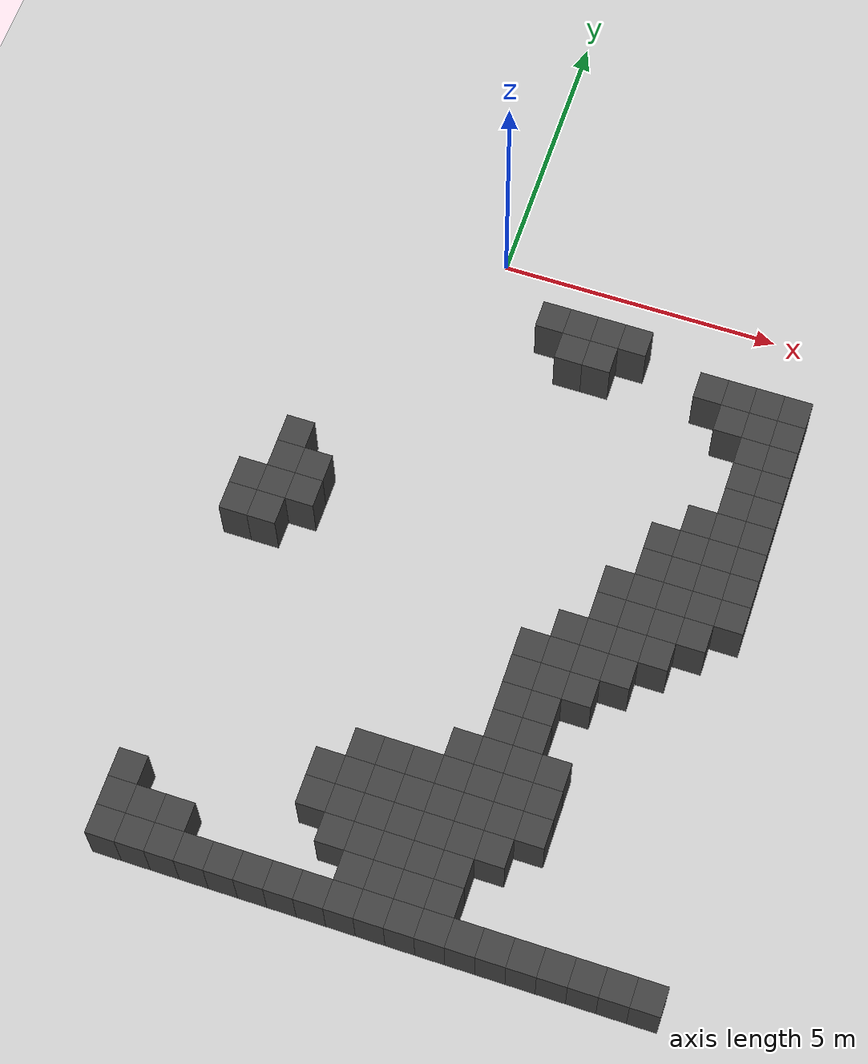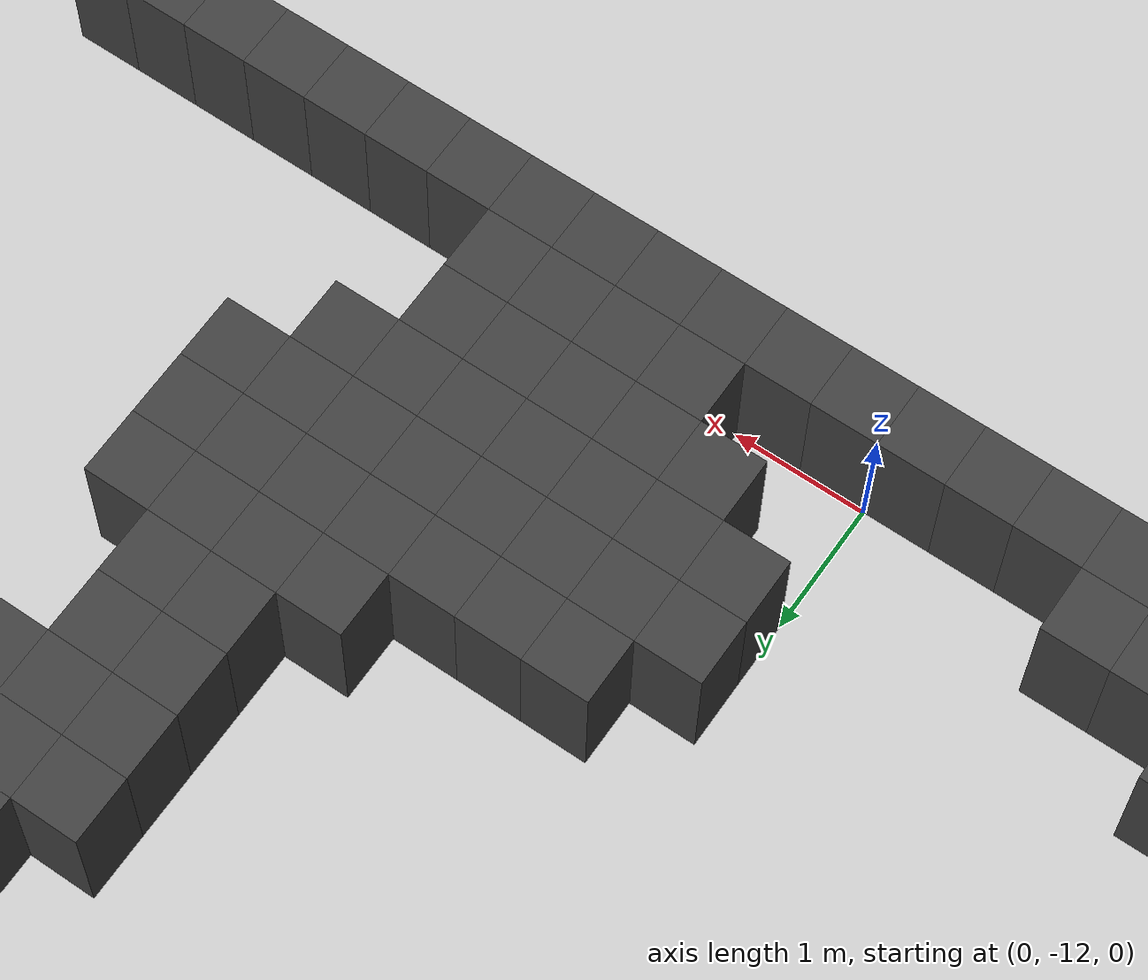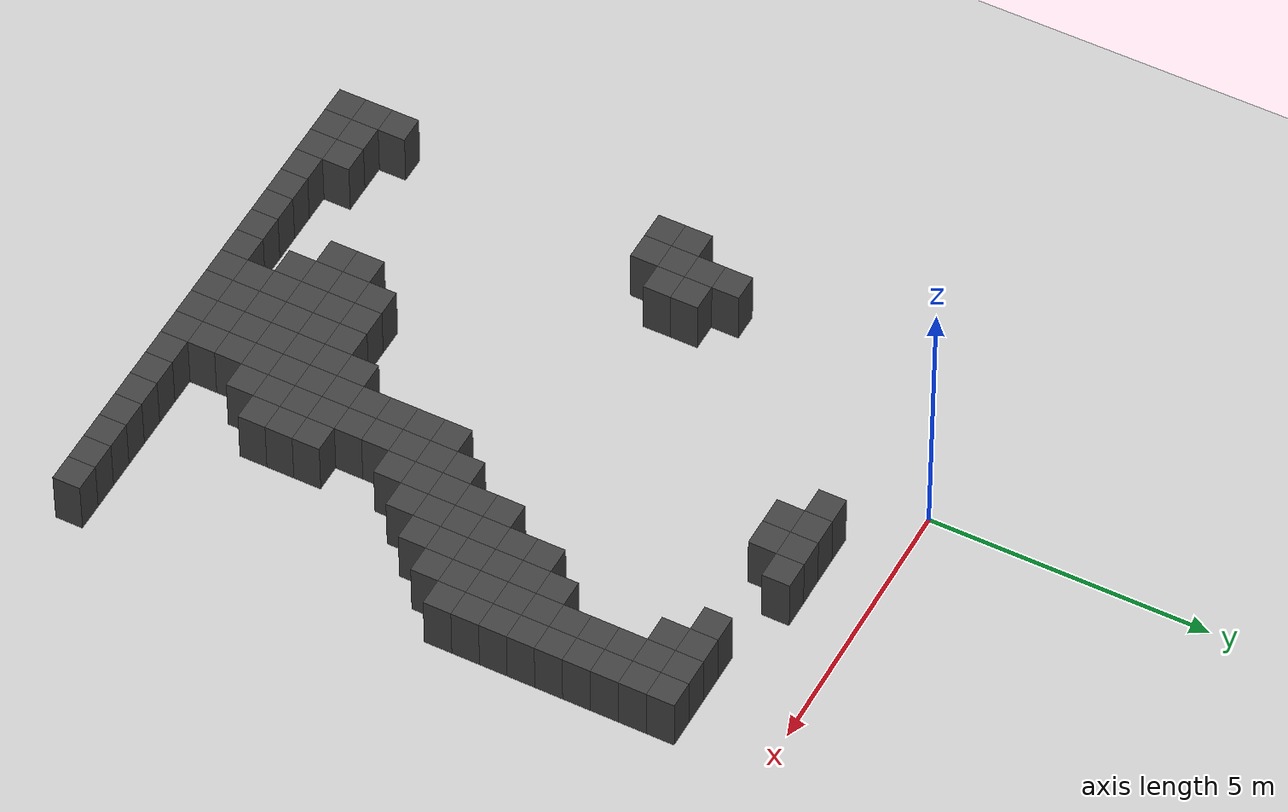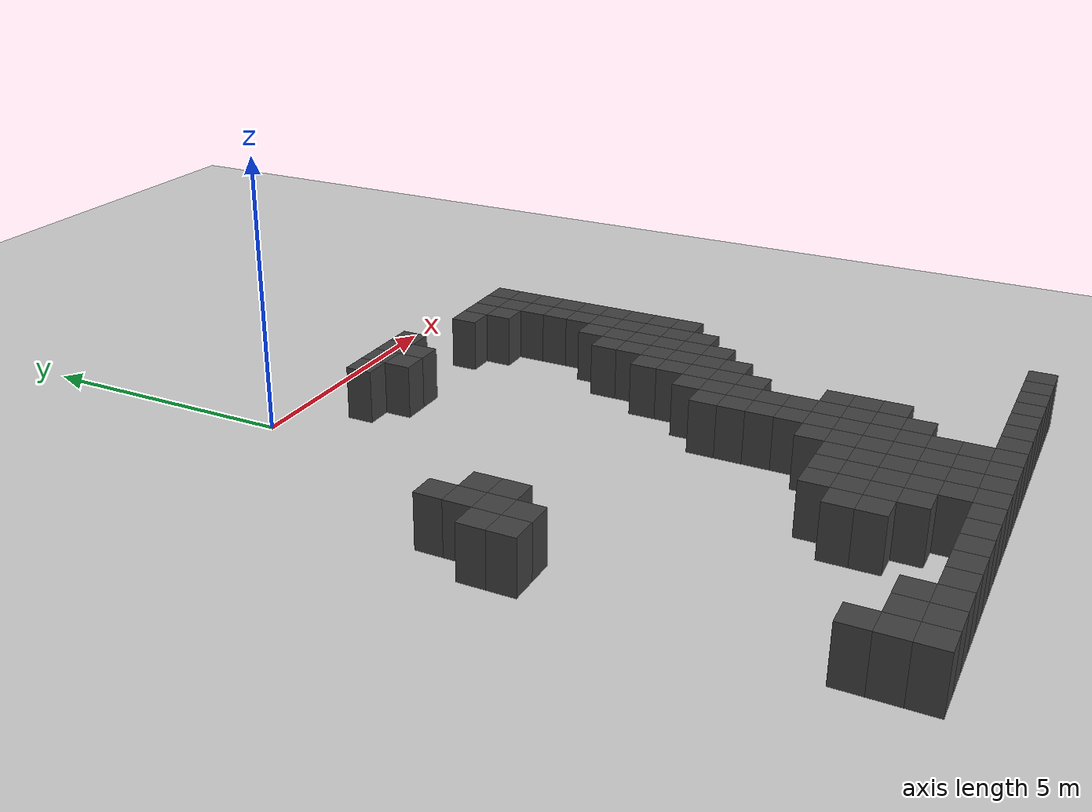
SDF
<sdf version="1.7">
 <world name="map_9381">
  <model name="ground_plane">
   <static>true</static>
   <link name="link">
    <collision name="collision">
     <geometry><plane><normal>0 0 1</normal><size>200 200</size></plane></geometry>
    </collision>
    <visual name="visual">
     <geometry><plane><normal>0 0 1</normal><size>200 200</size></plane></geometry>
     <material><ambient>0.8 0.8 0.8 1</ambient><diffuse>0.8 0.8 0.8 1</diffuse></material>
    </visual>
   </link>
  </model>
  <model name="maze_environment">
   <static>true</static>
   <link name="wall_411">
    <pose>1.250 -1.250 0.500 0 0 0</pose>
    <collision name="col"><geometry><box><size>0.5 0.5 1.0</size></box></geometry></collision>
    <visual name="vis">
     <geometry><box><size>0.5 0.5 1.0</size></box></geometry>
     <material><ambient>0.15 0.15 0.15 1</ambient><diffuse>0.25 0.25 0.25 1</diffuse></material>
    </visual>
   </link>
   <link name="wall_412">
    <pose>1.750 -1.250 0.500 0 0 0</pose>
    <collision name="col"><geometry><box><size>0.5 0.5 1.0</size></box></geometry></collision>
    <visual name="vis">
     <geometry><box><size>0.5 0.5 1.0</size></box></geometry>
     <material><ambient>0.15 0.15 0.15 1</ambient><diffuse>0.25 0.25 0.25 1</diffuse></material>
    </visual>
   </link>
   <link name="wall_413">
    <pose>2.250 -1.250 0.500 0 0 0</pose>
    <collision name="col"><geometry><box><size>0.5 0.5 1.0</size></box></geometry></collision>
    <visual name="vis">
     <geometry><box><size>0.5 0.5 1.0</size></box></geometry>
     <material><ambient>0.15 0.15 0.15 1</ambient><diffuse>0.25 0.25 0.25 1</diffuse></material>
    </visual>
   </link>
   <link name="wall_414">
    <pose>2.750 -1.250 0.500 0 0 0</pose>
    <collision name="col"><geometry><box><size>0.5 0.5 1.0</size></box></geometry></collision>
    <visual name="vis">
     <geometry><box><size>0.5 0.5 1.0</size></box></geometry>
     <material><ambient>0.15 0.15 0.15 1</ambient><diffuse>0.25 0.25 0.25 1</diffuse></material>
    </visual>
   </link>
   <link name="wall_433">
    <pose>1.750 -1.750 0.500 0 0 0</pose>
    <collision name="col"><geometry><box><size>0.5 0.5 1.0</size></box></geometry></collision>
    <visual name="vis">
     <geometry><box><size>0.5 0.5 1.0</size></box></geometry>
     <material><ambient>0.15 0.15 0.15 1</ambient><diffuse>0.25 0.25 0.25 1</diffuse></material>
    </visual>
   </link>
   <link name="wall_434">
    <pose>2.250 -1.750 0.500 0 0 0</pose>
    <collision name="col"><geometry><box><size>0.5 0.5 1.0</size></box></geometry></collision>
    <visual name="vis">
     <geometry><box><size>0.5 0.5 1.0</size></box></geometry>
     <material><ambient>0.15 0.15 0.15 1</ambient><diffuse>0.25 0.25 0.25 1</diffuse></material>
    </visual>
   </link>
   <link name="wall_435">
    <pose>4.250 -1.750 0.500 0 0 0</pose>
    <collision name="col"><geometry><box><size>0.5 0.5 1.0</size></box></geometry></collision>
    <visual name="vis">
     <geometry><box><size>0.5 0.5 1.0</size></box></geometry>
     <material><ambient>0.15 0.15 0.15 1</ambient><diffuse>0.25 0.25 0.25 1</diffuse></material>
    </visual>
   </link>
   <link name="wall_436">
    <pose>4.750 -1.750 0.500 0 0 0</pose>
    <collision name="col"><geometry><box><size>0.5 0.5 1.0</size></box></geometry></collision>
    <visual name="vis">
     <geometry><box><size>0.5 0.5 1.0</size></box></geometry>
     <material><ambient>0.15 0.15 0.15 1</ambient><diffuse>0.25 0.25 0.25 1</diffuse></material>
    </visual>
   </link>
   <link name="wall_437">
    <pose>5.250 -1.750 0.500 0 0 0</pose>
    <collision name="col"><geometry><box><size>0.5 0.5 1.0</size></box></geometry></collision>
    <visual name="vis">
     <geometry><box><size>0.5 0.5 1.0</size></box></geometry>
     <material><ambient>0.15 0.15 0.15 1</ambient><diffuse>0.25 0.25 0.25 1</diffuse></material>
    </visual>
   </link>
   <link name="wall_438">
    <pose>5.750 -1.750 0.500 0 0 0</pose>
    <collision name="col"><geometry><box><size>0.5 0.5 1.0</size></box></geometry></collision>
    <visual name="vis">
     <geometry><box><size>0.5 0.5 1.0</size></box></geometry>
     <material><ambient>0.15 0.15 0.15 1</ambient><diffuse>0.25 0.25 0.25 1</diffuse></material>
    </visual>
   </link>
   <link name="wall_452">
    <pose>4.750 -2.250 0.500 0 0 0</pose>
    <collision name="col"><geometry><box><size>0.5 0.5 1.0</size></box></geometry></collision>
    <visual name="vis">
     <geometry><box><size>0.5 0.5 1.0</size></box></geometry>
     <material><ambient>0.15 0.15 0.15 1</ambient><diffuse>0.25 0.25 0.25 1</diffuse></material>
    </visual>
   </link>
   <link name="wall_453">
    <pose>5.250 -2.250 0.500 0 0 0</pose>
    <collision name="col"><geometry><box><size>0.5 0.5 1.0</size></box></geometry></collision>
    <visual name="vis">
     <geometry><box><size>0.5 0.5 1.0</size></box></geometry>
     <material><ambient>0.15 0.15 0.15 1</ambient><diffuse>0.25 0.25 0.25 1</diffuse></material>
    </visual>
   </link>
   <link name="wall_454">
    <pose>5.750 -2.250 0.500 0 0 0</pose>
    <collision name="col"><geometry><box><size>0.5 0.5 1.0</size></box></geometry></collision>
    <visual name="vis">
     <geometry><box><size>0.5 0.5 1.0</size></box></geometry>
     <material><ambient>0.15 0.15 0.15 1</ambient><diffuse>0.25 0.25 0.25 1</diffuse></material>
    </visual>
   </link>
   <link name="wall_468">
    <pose>5.250 -2.750 0.500 0 0 0</pose>
    <collision name="col"><geometry><box><size>0.5 0.5 1.0</size></box></geometry></collision>
    <visual name="vis">
     <geometry><box><size>0.5 0.5 1.0</size></box></geometry>
     <material><ambient>0.15 0.15 0.15 1</ambient><diffuse>0.25 0.25 0.25 1</diffuse></material>
    </visual>
   </link>
   <link name="wall_469">
    <pose>5.750 -2.750 0.500 0 0 0</pose>
    <collision name="col"><geometry><box><size>0.5 0.5 1.0</size></box></geometry></collision>
    <visual name="vis">
     <geometry><box><size>0.5 0.5 1.0</size></box></geometry>
     <material><ambient>0.15 0.15 0.15 1</ambient><diffuse>0.25 0.25 0.25 1</diffuse></material>
    </visual>
   </link>
   <link name="wall_481">
    <pose>5.250 -3.250 0.500 0 0 0</pose>
    <collision name="col"><geometry><box><size>0.5 0.5 1.0</size></box></geometry></collision>
    <visual name="vis">
     <geometry><box><size>0.5 0.5 1.0</size></box></geometry>
     <material><ambient>0.15 0.15 0.15 1</ambient><diffuse>0.25 0.25 0.25 1</diffuse></material>
    </visual>
   </link>
   <link name="wall_482">
    <pose>5.750 -3.250 0.500 0 0 0</pose>
    <collision name="col"><geometry><box><size>0.5 0.5 1.0</size></box></geometry></collision>
    <visual name="vis">
     <geometry><box><size>0.5 0.5 1.0</size></box></geometry>
     <material><ambient>0.15 0.15 0.15 1</ambient><diffuse>0.25 0.25 0.25 1</diffuse></material>
    </visual>
   </link>
   <link name="wall_495">
    <pose>5.250 -3.750 0.500 0 0 0</pose>
    <collision name="col"><geometry><box><size>0.5 0.5 1.0</size></box></geometry></collision>
    <visual name="vis">
     <geometry><box><size>0.5 0.5 1.0</size></box></geometry>
     <material><ambient>0.15 0.15 0.15 1</ambient><diffuse>0.25 0.25 0.25 1</diffuse></material>
    </visual>
   </link>
   <link name="wall_496">
    <pose>5.750 -3.750 0.500 0 0 0</pose>
    <collision name="col"><geometry><box><size>0.5 0.5 1.0</size></box></geometry></collision>
    <visual name="vis">
     <geometry><box><size>0.5 0.5 1.0</size></box></geometry>
     <material><ambient>0.15 0.15 0.15 1</ambient><diffuse>0.25 0.25 0.25 1</diffuse></material>
    </visual>
   </link>
   <link name="wall_512">
    <pose>4.750 -4.250 0.500 0 0 0</pose>
    <collision name="col"><geometry><box><size>0.5 0.5 1.0</size></box></geometry></collision>
    <visual name="vis">
     <geometry><box><size>0.5 0.5 1.0</size></box></geometry>
     <material><ambient>0.15 0.15 0.15 1</ambient><diffuse>0.25 0.25 0.25 1</diffuse></material>
    </visual>
   </link>
   <link name="wall_513">
    <pose>5.250 -4.250 0.500 0 0 0</pose>
    <collision name="col"><geometry><box><size>0.5 0.5 1.0</size></box></geometry></collision>
    <visual name="vis">
     <geometry><box><size>0.5 0.5 1.0</size></box></geometry>
     <material><ambient>0.15 0.15 0.15 1</ambient><diffuse>0.25 0.25 0.25 1</diffuse></material>
    </visual>
   </link>
   <link name="wall_514">
    <pose>5.750 -4.250 0.500 0 0 0</pose>
    <collision name="col"><geometry><box><size>0.5 0.5 1.0</size></box></geometry></collision>
    <visual name="vis">
     <geometry><box><size>0.5 0.5 1.0</size></box></geometry>
     <material><ambient>0.15 0.15 0.15 1</ambient><diffuse>0.25 0.25 0.25 1</diffuse></material>
    </visual>
   </link>
   <link name="wall_533">
    <pose>-2.250 -4.750 0.500 0 0 0</pose>
    <collision name="col"><geometry><box><size>0.5 0.5 1.0</size></box></geometry></collision>
    <visual name="vis">
     <geometry><box><size>0.5 0.5 1.0</size></box></geometry>
     <material><ambient>0.15 0.15 0.15 1</ambient><diffuse>0.25 0.25 0.25 1</diffuse></material>
    </visual>
   </link>
   <link name="wall_534">
    <pose>4.250 -4.750 0.500 0 0 0</pose>
    <collision name="col"><geometry><box><size>0.5 0.5 1.0</size></box></geometry></collision>
    <visual name="vis">
     <geometry><box><size>0.5 0.5 1.0</size></box></geometry>
     <material><ambient>0.15 0.15 0.15 1</ambient><diffuse>0.25 0.25 0.25 1</diffuse></material>
    </visual>
   </link>
   <link name="wall_535">
    <pose>4.750 -4.750 0.500 0 0 0</pose>
    <collision name="col"><geometry><box><size>0.5 0.5 1.0</size></box></geometry></collision>
    <visual name="vis">
     <geometry><box><size>0.5 0.5 1.0</size></box></geometry>
     <material><ambient>0.15 0.15 0.15 1</ambient><diffuse>0.25 0.25 0.25 1</diffuse></material>
    </visual>
   </link>
   <link name="wall_536">
    <pose>5.250 -4.750 0.500 0 0 0</pose>
    <collision name="col"><geometry><box><size>0.5 0.5 1.0</size></box></geometry></collision>
    <visual name="vis">
     <geometry><box><size>0.5 0.5 1.0</size></box></geometry>
     <material><ambient>0.15 0.15 0.15 1</ambient><diffuse>0.25 0.25 0.25 1</diffuse></material>
    </visual>
   </link>
   <link name="wall_537">
    <pose>5.750 -4.750 0.500 0 0 0</pose>
    <collision name="col"><geometry><box><size>0.5 0.5 1.0</size></box></geometry></collision>
    <visual name="vis">
     <geometry><box><size>0.5 0.5 1.0</size></box></geometry>
     <material><ambient>0.15 0.15 0.15 1</ambient><diffuse>0.25 0.25 0.25 1</diffuse></material>
    </visual>
   </link>
   <link name="wall_553">
    <pose>-2.250 -5.250 0.500 0 0 0</pose>
    <collision name="col"><geometry><box><size>0.5 0.5 1.0</size></box></geometry></collision>
    <visual name="vis">
     <geometry><box><size>0.5 0.5 1.0</size></box></geometry>
     <material><ambient>0.15 0.15 0.15 1</ambient><diffuse>0.25 0.25 0.25 1</diffuse></material>
    </visual>
   </link>
   <link name="wall_554">
    <pose>-1.750 -5.250 0.500 0 0 0</pose>
    <collision name="col"><geometry><box><size>0.5 0.5 1.0</size></box></geometry></collision>
    <visual name="vis">
     <geometry><box><size>0.5 0.5 1.0</size></box></geometry>
     <material><ambient>0.15 0.15 0.15 1</ambient><diffuse>0.25 0.25 0.25 1</diffuse></material>
    </visual>
   </link>
   <link name="wall_555">
    <pose>4.250 -5.250 0.500 0 0 0</pose>
    <collision name="col"><geometry><box><size>0.5 0.5 1.0</size></box></geometry></collision>
    <visual name="vis">
     <geometry><box><size>0.5 0.5 1.0</size></box></geometry>
     <material><ambient>0.15 0.15 0.15 1</ambient><diffuse>0.25 0.25 0.25 1</diffuse></material>
    </visual>
   </link>
   <link name="wall_556">
    <pose>4.750 -5.250 0.500 0 0 0</pose>
    <collision name="col"><geometry><box><size>0.5 0.5 1.0</size></box></geometry></collision>
    <visual name="vis">
     <geometry><box><size>0.5 0.5 1.0</size></box></geometry>
     <material><ambient>0.15 0.15 0.15 1</ambient><diffuse>0.25 0.25 0.25 1</diffuse></material>
    </visual>
   </link>
   <link name="wall_557">
    <pose>5.250 -5.250 0.500 0 0 0</pose>
    <collision name="col"><geometry><box><size>0.5 0.5 1.0</size></box></geometry></collision>
    <visual name="vis">
     <geometry><box><size>0.5 0.5 1.0</size></box></geometry>
     <material><ambient>0.15 0.15 0.15 1</ambient><diffuse>0.25 0.25 0.25 1</diffuse></material>
    </visual>
   </link>
   <link name="wall_558">
    <pose>5.750 -5.250 0.500 0 0 0</pose>
    <collision name="col"><geometry><box><size>0.5 0.5 1.0</size></box></geometry></collision>
    <visual name="vis">
     <geometry><box><size>0.5 0.5 1.0</size></box></geometry>
     <material><ambient>0.15 0.15 0.15 1</ambient><diffuse>0.25 0.25 0.25 1</diffuse></material>
    </visual>
   </link>
   <link name="wall_569">
    <pose>-2.750 -5.750 0.500 0 0 0</pose>
    <collision name="col"><geometry><box><size>0.5 0.5 1.0</size></box></geometry></collision>
    <visual name="vis">
     <geometry><box><size>0.5 0.5 1.0</size></box></geometry>
     <material><ambient>0.15 0.15 0.15 1</ambient><diffuse>0.25 0.25 0.25 1</diffuse></material>
    </visual>
   </link>
   <link name="wall_570">
    <pose>-2.250 -5.750 0.500 0 0 0</pose>
    <collision name="col"><geometry><box><size>0.5 0.5 1.0</size></box></geometry></collision>
    <visual name="vis">
     <geometry><box><size>0.5 0.5 1.0</size></box></geometry>
     <material><ambient>0.15 0.15 0.15 1</ambient><diffuse>0.25 0.25 0.25 1</diffuse></material>
    </visual>
   </link>
   <link name="wall_571">
    <pose>-1.750 -5.750 0.500 0 0 0</pose>
    <collision name="col"><geometry><box><size>0.5 0.5 1.0</size></box></geometry></collision>
    <visual name="vis">
     <geometry><box><size>0.5 0.5 1.0</size></box></geometry>
     <material><ambient>0.15 0.15 0.15 1</ambient><diffuse>0.25 0.25 0.25 1</diffuse></material>
    </visual>
   </link>
   <link name="wall_572">
    <pose>3.750 -5.750 0.500 0 0 0</pose>
    <collision name="col"><geometry><box><size>0.5 0.5 1.0</size></box></geometry></collision>
    <visual name="vis">
     <geometry><box><size>0.5 0.5 1.0</size></box></geometry>
     <material><ambient>0.15 0.15 0.15 1</ambient><diffuse>0.25 0.25 0.25 1</diffuse></material>
    </visual>
   </link>
   <link name="wall_573">
    <pose>4.250 -5.750 0.500 0 0 0</pose>
    <collision name="col"><geometry><box><size>0.5 0.5 1.0</size></box></geometry></collision>
    <visual name="vis">
     <geometry><box><size>0.5 0.5 1.0</size></box></geometry>
     <material><ambient>0.15 0.15 0.15 1</ambient><diffuse>0.25 0.25 0.25 1</diffuse></material>
    </visual>
   </link>
   <link name="wall_574">
    <pose>4.750 -5.750 0.500 0 0 0</pose>
    <collision name="col"><geometry><box><size>0.5 0.5 1.0</size></box></geometry></collision>
    <visual name="vis">
     <geometry><box><size>0.5 0.5 1.0</size></box></geometry>
     <material><ambient>0.15 0.15 0.15 1</ambient><diffuse>0.25 0.25 0.25 1</diffuse></material>
    </visual>
   </link>
   <link name="wall_575">
    <pose>5.250 -5.750 0.500 0 0 0</pose>
    <collision name="col"><geometry><box><size>0.5 0.5 1.0</size></box></geometry></collision>
    <visual name="vis">
     <geometry><box><size>0.5 0.5 1.0</size></box></geometry>
     <material><ambient>0.15 0.15 0.15 1</ambient><diffuse>0.25 0.25 0.25 1</diffuse></material>
    </visual>
   </link>
   <link name="wall_576">
    <pose>5.750 -5.750 0.500 0 0 0</pose>
    <collision name="col"><geometry><box><size>0.5 0.5 1.0</size></box></geometry></collision>
    <visual name="vis">
     <geometry><box><size>0.5 0.5 1.0</size></box></geometry>
     <material><ambient>0.15 0.15 0.15 1</ambient><diffuse>0.25 0.25 0.25 1</diffuse></material>
    </visual>
   </link>
   <link name="wall_584">
    <pose>-2.750 -6.250 0.500 0 0 0</pose>
    <collision name="col"><geometry><box><size>0.5 0.5 1.0</size></box></geometry></collision>
    <visual name="vis">
     <geometry><box><size>0.5 0.5 1.0</size></box></geometry>
     <material><ambient>0.15 0.15 0.15 1</ambient><diffuse>0.25 0.25 0.25 1</diffuse></material>
    </visual>
   </link>
   <link name="wall_585">
    <pose>-2.250 -6.250 0.500 0 0 0</pose>
    <collision name="col"><geometry><box><size>0.5 0.5 1.0</size></box></geometry></collision>
    <visual name="vis">
     <geometry><box><size>0.5 0.5 1.0</size></box></geometry>
     <material><ambient>0.15 0.15 0.15 1</ambient><diffuse>0.25 0.25 0.25 1</diffuse></material>
    </visual>
   </link>
   <link name="wall_586">
    <pose>3.750 -6.250 0.500 0 0 0</pose>
    <collision name="col"><geometry><box><size>0.5 0.5 1.0</size></box></geometry></collision>
    <visual name="vis">
     <geometry><box><size>0.5 0.5 1.0</size></box></geometry>
     <material><ambient>0.15 0.15 0.15 1</ambient><diffuse>0.25 0.25 0.25 1</diffuse></material>
    </visual>
   </link>
   <link name="wall_587">
    <pose>4.250 -6.250 0.500 0 0 0</pose>
    <collision name="col"><geometry><box><size>0.5 0.5 1.0</size></box></geometry></collision>
    <visual name="vis">
     <geometry><box><size>0.5 0.5 1.0</size></box></geometry>
     <material><ambient>0.15 0.15 0.15 1</ambient><diffuse>0.25 0.25 0.25 1</diffuse></material>
    </visual>
   </link>
   <link name="wall_588">
    <pose>4.750 -6.250 0.500 0 0 0</pose>
    <collision name="col"><geometry><box><size>0.5 0.5 1.0</size></box></geometry></collision>
    <visual name="vis">
     <geometry><box><size>0.5 0.5 1.0</size></box></geometry>
     <material><ambient>0.15 0.15 0.15 1</ambient><diffuse>0.25 0.25 0.25 1</diffuse></material>
    </visual>
   </link>
   <link name="wall_589">
    <pose>5.250 -6.250 0.500 0 0 0</pose>
    <collision name="col"><geometry><box><size>0.5 0.5 1.0</size></box></geometry></collision>
    <visual name="vis">
     <geometry><box><size>0.5 0.5 1.0</size></box></geometry>
     <material><ambient>0.15 0.15 0.15 1</ambient><diffuse>0.25 0.25 0.25 1</diffuse></material>
    </visual>
   </link>
   <link name="wall_594">
    <pose>3.250 -6.750 0.500 0 0 0</pose>
    <collision name="col"><geometry><box><size>0.5 0.5 1.0</size></box></geometry></collision>
    <visual name="vis">
     <geometry><box><size>0.5 0.5 1.0</size></box></geometry>
     <material><ambient>0.15 0.15 0.15 1</ambient><diffuse>0.25 0.25 0.25 1</diffuse></material>
    </visual>
   </link>
   <link name="wall_595">
    <pose>3.750 -6.750 0.500 0 0 0</pose>
    <collision name="col"><geometry><box><size>0.5 0.5 1.0</size></box></geometry></collision>
    <visual name="vis">
     <geometry><box><size>0.5 0.5 1.0</size></box></geometry>
     <material><ambient>0.15 0.15 0.15 1</ambient><diffuse>0.25 0.25 0.25 1</diffuse></material>
    </visual>
   </link>
   <link name="wall_596">
    <pose>4.250 -6.750 0.500 0 0 0</pose>
    <collision name="col"><geometry><box><size>0.5 0.5 1.0</size></box></geometry></collision>
    <visual name="vis">
     <geometry><box><size>0.5 0.5 1.0</size></box></geometry>
     <material><ambient>0.15 0.15 0.15 1</ambient><diffuse>0.25 0.25 0.25 1</diffuse></material>
    </visual>
   </link>
   <link name="wall_597">
    <pose>4.750 -6.750 0.500 0 0 0</pose>
    <collision name="col"><geometry><box><size>0.5 0.5 1.0</size></box></geometry></collision>
    <visual name="vis">
     <geometry><box><size>0.5 0.5 1.0</size></box></geometry>
     <material><ambient>0.15 0.15 0.15 1</ambient><diffuse>0.25 0.25 0.25 1</diffuse></material>
    </visual>
   </link>
   <link name="wall_604">
    <pose>2.750 -7.250 0.500 0 0 0</pose>
    <collision name="col"><geometry><box><size>0.5 0.5 1.0</size></box></geometry></collision>
    <visual name="vis">
     <geometry><box><size>0.5 0.5 1.0</size></box></geometry>
     <material><ambient>0.15 0.15 0.15 1</ambient><diffuse>0.25 0.25 0.25 1</diffuse></material>
    </visual>
   </link>
   <link name="wall_605">
    <pose>3.250 -7.250 0.500 0 0 0</pose>
    <collision name="col"><geometry><box><size>0.5 0.5 1.0</size></box></geometry></collision>
    <visual name="vis">
     <geometry><box><size>0.5 0.5 1.0</size></box></geometry>
     <material><ambient>0.15 0.15 0.15 1</ambient><diffuse>0.25 0.25 0.25 1</diffuse></material>
    </visual>
   </link>
   <link name="wall_606">
    <pose>3.750 -7.250 0.500 0 0 0</pose>
    <collision name="col"><geometry><box><size>0.5 0.5 1.0</size></box></geometry></collision>
    <visual name="vis">
     <geometry><box><size>0.5 0.5 1.0</size></box></geometry>
     <material><ambient>0.15 0.15 0.15 1</ambient><diffuse>0.25 0.25 0.25 1</diffuse></material>
    </visual>
   </link>
   <link name="wall_607">
    <pose>4.250 -7.250 0.500 0 0 0</pose>
    <collision name="col"><geometry><box><size>0.5 0.5 1.0</size></box></geometry></collision>
    <visual name="vis">
     <geometry><box><size>0.5 0.5 1.0</size></box></geometry>
     <material><ambient>0.15 0.15 0.15 1</ambient><diffuse>0.25 0.25 0.25 1</diffuse></material>
    </visual>
   </link>
   <link name="wall_619">
    <pose>2.750 -7.750 0.500 0 0 0</pose>
    <collision name="col"><geometry><box><size>0.5 0.5 1.0</size></box></geometry></collision>
    <visual name="vis">
     <geometry><box><size>0.5 0.5 1.0</size></box></geometry>
     <material><ambient>0.15 0.15 0.15 1</ambient><diffuse>0.25 0.25 0.25 1</diffuse></material>
    </visual>
   </link>
   <link name="wall_620">
    <pose>3.250 -7.750 0.500 0 0 0</pose>
    <collision name="col"><geometry><box><size>0.5 0.5 1.0</size></box></geometry></collision>
    <visual name="vis">
     <geometry><box><size>0.5 0.5 1.0</size></box></geometry>
     <material><ambient>0.15 0.15 0.15 1</ambient><diffuse>0.25 0.25 0.25 1</diffuse></material>
    </visual>
   </link>
   <link name="wall_621">
    <pose>3.750 -7.750 0.500 0 0 0</pose>
    <collision name="col"><geometry><box><size>0.5 0.5 1.0</size></box></geometry></collision>
    <visual name="vis">
     <geometry><box><size>0.5 0.5 1.0</size></box></geometry>
     <material><ambient>0.15 0.15 0.15 1</ambient><diffuse>0.25 0.25 0.25 1</diffuse></material>
    </visual>
   </link>
   <link name="wall_639">
    <pose>2.750 -8.250 0.500 0 0 0</pose>
    <collision name="col"><geometry><box><size>0.5 0.5 1.0</size></box></geometry></collision>
    <visual name="vis">
     <geometry><box><size>0.5 0.5 1.0</size></box></geometry>
     <material><ambient>0.15 0.15 0.15 1</ambient><diffuse>0.25 0.25 0.25 1</diffuse></material>
    </visual>
   </link>
   <link name="wall_640">
    <pose>3.250 -8.250 0.500 0 0 0</pose>
    <collision name="col"><geometry><box><size>0.5 0.5 1.0</size></box></geometry></collision>
    <visual name="vis">
     <geometry><box><size>0.5 0.5 1.0</size></box></geometry>
     <material><ambient>0.15 0.15 0.15 1</ambient><diffuse>0.25 0.25 0.25 1</diffuse></material>
    </visual>
   </link>
   <link name="wall_662">
    <pose>2.750 -8.750 0.500 0 0 0</pose>
    <collision name="col"><geometry><box><size>0.5 0.5 1.0</size></box></geometry></collision>
    <visual name="vis">
     <geometry><box><size>0.5 0.5 1.0</size></box></geometry>
     <material><ambient>0.15 0.15 0.15 1</ambient><diffuse>0.25 0.25 0.25 1</diffuse></material>
    </visual>
   </link>
   <link name="wall_663">
    <pose>3.250 -8.750 0.500 0 0 0</pose>
    <collision name="col"><geometry><box><size>0.5 0.5 1.0</size></box></geometry></collision>
    <visual name="vis">
     <geometry><box><size>0.5 0.5 1.0</size></box></geometry>
     <material><ambient>0.15 0.15 0.15 1</ambient><diffuse>0.25 0.25 0.25 1</diffuse></material>
    </visual>
   </link>
   <link name="wall_685">
    <pose>2.250 -9.250 0.500 0 0 0</pose>
    <collision name="col"><geometry><box><size>0.5 0.5 1.0</size></box></geometry></collision>
    <visual name="vis">
     <geometry><box><size>0.5 0.5 1.0</size></box></geometry>
     <material><ambient>0.15 0.15 0.15 1</ambient><diffuse>0.25 0.25 0.25 1</diffuse></material>
    </visual>
   </link>
   <link name="wall_686">
    <pose>2.750 -9.250 0.500 0 0 0</pose>
    <collision name="col"><geometry><box><size>0.5 0.5 1.0</size></box></geometry></collision>
    <visual name="vis">
     <geometry><box><size>0.5 0.5 1.0</size></box></geometry>
     <material><ambient>0.15 0.15 0.15 1</ambient><diffuse>0.25 0.25 0.25 1</diffuse></material>
    </visual>
   </link>
   <link name="wall_687">
    <pose>3.250 -9.250 0.500 0 0 0</pose>
    <collision name="col"><geometry><box><size>0.5 0.5 1.0</size></box></geometry></collision>
    <visual name="vis">
     <geometry><box><size>0.5 0.5 1.0</size></box></geometry>
     <material><ambient>0.15 0.15 0.15 1</ambient><diffuse>0.25 0.25 0.25 1</diffuse></material>
    </visual>
   </link>
   <link name="wall_688">
    <pose>3.750 -9.250 0.500 0 0 0</pose>
    <collision name="col"><geometry><box><size>0.5 0.5 1.0</size></box></geometry></collision>
    <visual name="vis">
     <geometry><box><size>0.5 0.5 1.0</size></box></geometry>
     <material><ambient>0.15 0.15 0.15 1</ambient><diffuse>0.25 0.25 0.25 1</diffuse></material>
    </visual>
   </link>
   <link name="wall_708">
    <pose>0.750 -9.750 0.500 0 0 0</pose>
    <collision name="col"><geometry><box><size>0.5 0.5 1.0</size></box></geometry></collision>
    <visual name="vis">
     <geometry><box><size>0.5 0.5 1.0</size></box></geometry>
     <material><ambient>0.15 0.15 0.15 1</ambient><diffuse>0.25 0.25 0.25 1</diffuse></material>
    </visual>
   </link>
   <link name="wall_709">
    <pose>1.250 -9.750 0.500 0 0 0</pose>
    <collision name="col"><geometry><box><size>0.5 0.5 1.0</size></box></geometry></collision>
    <visual name="vis">
     <geometry><box><size>0.5 0.5 1.0</size></box></geometry>
     <material><ambient>0.15 0.15 0.15 1</ambient><diffuse>0.25 0.25 0.25 1</diffuse></material>
    </visual>
   </link>
   <link name="wall_710">
    <pose>1.750 -9.750 0.500 0 0 0</pose>
    <collision name="col"><geometry><box><size>0.5 0.5 1.0</size></box></geometry></collision>
    <visual name="vis">
     <geometry><box><size>0.5 0.5 1.0</size></box></geometry>
     <material><ambient>0.15 0.15 0.15 1</ambient><diffuse>0.25 0.25 0.25 1</diffuse></material>
    </visual>
   </link>
   <link name="wall_711">
    <pose>2.250 -9.750 0.500 0 0 0</pose>
    <collision name="col"><geometry><box><size>0.5 0.5 1.0</size></box></geometry></collision>
    <visual name="vis">
     <geometry><box><size>0.5 0.5 1.0</size></box></geometry>
     <material><ambient>0.15 0.15 0.15 1</ambient><diffuse>0.25 0.25 0.25 1</diffuse></material>
    </visual>
   </link>
   <link name="wall_712">
    <pose>2.750 -9.750 0.500 0 0 0</pose>
    <collision name="col"><geometry><box><size>0.5 0.5 1.0</size></box></geometry></collision>
    <visual name="vis">
     <geometry><box><size>0.5 0.5 1.0</size></box></geometry>
     <material><ambient>0.15 0.15 0.15 1</ambient><diffuse>0.25 0.25 0.25 1</diffuse></material>
    </visual>
   </link>
   <link name="wall_713">
    <pose>3.250 -9.750 0.500 0 0 0</pose>
    <collision name="col"><geometry><box><size>0.5 0.5 1.0</size></box></geometry></collision>
    <visual name="vis">
     <geometry><box><size>0.5 0.5 1.0</size></box></geometry>
     <material><ambient>0.15 0.15 0.15 1</ambient><diffuse>0.25 0.25 0.25 1</diffuse></material>
    </visual>
   </link>
   <link name="wall_714">
    <pose>3.750 -9.750 0.500 0 0 0</pose>
    <collision name="col"><geometry><box><size>0.5 0.5 1.0</size></box></geometry></collision>
    <visual name="vis">
     <geometry><box><size>0.5 0.5 1.0</size></box></geometry>
     <material><ambient>0.15 0.15 0.15 1</ambient><diffuse>0.25 0.25 0.25 1</diffuse></material>
    </visual>
   </link>
   <link name="wall_729">
    <pose>0.250 -10.250 0.500 0 0 0</pose>
    <collision name="col"><geometry><box><size>0.5 0.5 1.0</size></box></geometry></collision>
    <visual name="vis">
     <geometry><box><size>0.5 0.5 1.0</size></box></geometry>
     <material><ambient>0.15 0.15 0.15 1</ambient><diffuse>0.25 0.25 0.25 1</diffuse></material>
    </visual>
   </link>
   <link name="wall_730">
    <pose>0.750 -10.250 0.500 0 0 0</pose>
    <collision name="col"><geometry><box><size>0.5 0.5 1.0</size></box></geometry></collision>
    <visual name="vis">
     <geometry><box><size>0.5 0.5 1.0</size></box></geometry>
     <material><ambient>0.15 0.15 0.15 1</ambient><diffuse>0.25 0.25 0.25 1</diffuse></material>
    </visual>
   </link>
   <link name="wall_731">
    <pose>1.250 -10.250 0.500 0 0 0</pose>
    <collision name="col"><geometry><box><size>0.5 0.5 1.0</size></box></geometry></collision>
    <visual name="vis">
     <geometry><box><size>0.5 0.5 1.0</size></box></geometry>
     <material><ambient>0.15 0.15 0.15 1</ambient><diffuse>0.25 0.25 0.25 1</diffuse></material>
    </visual>
   </link>
   <link name="wall_732">
    <pose>1.750 -10.250 0.500 0 0 0</pose>
    <collision name="col"><geometry><box><size>0.5 0.5 1.0</size></box></geometry></collision>
    <visual name="vis">
     <geometry><box><size>0.5 0.5 1.0</size></box></geometry>
     <material><ambient>0.15 0.15 0.15 1</ambient><diffuse>0.25 0.25 0.25 1</diffuse></material>
    </visual>
   </link>
   <link name="wall_733">
    <pose>2.250 -10.250 0.500 0 0 0</pose>
    <collision name="col"><geometry><box><size>0.5 0.5 1.0</size></box></geometry></collision>
    <visual name="vis">
     <geometry><box><size>0.5 0.5 1.0</size></box></geometry>
     <material><ambient>0.15 0.15 0.15 1</ambient><diffuse>0.25 0.25 0.25 1</diffuse></material>
    </visual>
   </link>
   <link name="wall_734">
    <pose>2.750 -10.250 0.500 0 0 0</pose>
    <collision name="col"><geometry><box><size>0.5 0.5 1.0</size></box></geometry></collision>
    <visual name="vis">
     <geometry><box><size>0.5 0.5 1.0</size></box></geometry>
     <material><ambient>0.15 0.15 0.15 1</ambient><diffuse>0.25 0.25 0.25 1</diffuse></material>
    </visual>
   </link>
   <link name="wall_735">
    <pose>3.250 -10.250 0.500 0 0 0</pose>
    <collision name="col"><geometry><box><size>0.5 0.5 1.0</size></box></geometry></collision>
    <visual name="vis">
     <geometry><box><size>0.5 0.5 1.0</size></box></geometry>
     <material><ambient>0.15 0.15 0.15 1</ambient><diffuse>0.25 0.25 0.25 1</diffuse></material>
    </visual>
   </link>
   <link name="wall_736">
    <pose>3.750 -10.250 0.500 0 0 0</pose>
    <collision name="col"><geometry><box><size>0.5 0.5 1.0</size></box></geometry></collision>
    <visual name="vis">
     <geometry><box><size>0.5 0.5 1.0</size></box></geometry>
     <material><ambient>0.15 0.15 0.15 1</ambient><diffuse>0.25 0.25 0.25 1</diffuse></material>
    </visual>
   </link>
   <link name="wall_745">
    <pose>0.250 -10.750 0.500 0 0 0</pose>
    <collision name="col"><geometry><box><size>0.5 0.5 1.0</size></box></geometry></collision>
    <visual name="vis">
     <geometry><box><size>0.5 0.5 1.0</size></box></geometry>
     <material><ambient>0.15 0.15 0.15 1</ambient><diffuse>0.25 0.25 0.25 1</diffuse></material>
    </visual>
   </link>
   <link name="wall_746">
    <pose>0.750 -10.750 0.500 0 0 0</pose>
    <collision name="col"><geometry><box><size>0.5 0.5 1.0</size></box></geometry></collision>
    <visual name="vis">
     <geometry><box><size>0.5 0.5 1.0</size></box></geometry>
     <material><ambient>0.15 0.15 0.15 1</ambient><diffuse>0.25 0.25 0.25 1</diffuse></material>
    </visual>
   </link>
   <link name="wall_747">
    <pose>1.250 -10.750 0.500 0 0 0</pose>
    <collision name="col"><geometry><box><size>0.5 0.5 1.0</size></box></geometry></collision>
    <visual name="vis">
     <geometry><box><size>0.5 0.5 1.0</size></box></geometry>
     <material><ambient>0.15 0.15 0.15 1</ambient><diffuse>0.25 0.25 0.25 1</diffuse></material>
    </visual>
   </link>
   <link name="wall_748">
    <pose>1.750 -10.750 0.500 0 0 0</pose>
    <collision name="col"><geometry><box><size>0.5 0.5 1.0</size></box></geometry></collision>
    <visual name="vis">
     <geometry><box><size>0.5 0.5 1.0</size></box></geometry>
     <material><ambient>0.15 0.15 0.15 1</ambient><diffuse>0.25 0.25 0.25 1</diffuse></material>
    </visual>
   </link>
   <link name="wall_749">
    <pose>2.250 -10.750 0.500 0 0 0</pose>
    <collision name="col"><geometry><box><size>0.5 0.5 1.0</size></box></geometry></collision>
    <visual name="vis">
     <geometry><box><size>0.5 0.5 1.0</size></box></geometry>
     <material><ambient>0.15 0.15 0.15 1</ambient><diffuse>0.25 0.25 0.25 1</diffuse></material>
    </visual>
   </link>
   <link name="wall_750">
    <pose>2.750 -10.750 0.500 0 0 0</pose>
    <collision name="col"><geometry><box><size>0.5 0.5 1.0</size></box></geometry></collision>
    <visual name="vis">
     <geometry><box><size>0.5 0.5 1.0</size></box></geometry>
     <material><ambient>0.15 0.15 0.15 1</ambient><diffuse>0.25 0.25 0.25 1</diffuse></material>
    </visual>
   </link>
   <link name="wall_751">
    <pose>3.250 -10.750 0.500 0 0 0</pose>
    <collision name="col"><geometry><box><size>0.5 0.5 1.0</size></box></geometry></collision>
    <visual name="vis">
     <geometry><box><size>0.5 0.5 1.0</size></box></geometry>
     <material><ambient>0.15 0.15 0.15 1</ambient><diffuse>0.25 0.25 0.25 1</diffuse></material>
    </visual>
   </link>
   <link name="wall_759">
    <pose>-2.750 -11.250 0.500 0 0 0</pose>
    <collision name="col"><geometry><box><size>0.5 0.5 1.0</size></box></geometry></collision>
    <visual name="vis">
     <geometry><box><size>0.5 0.5 1.0</size></box></geometry>
     <material><ambient>0.15 0.15 0.15 1</ambient><diffuse>0.25 0.25 0.25 1</diffuse></material>
    </visual>
   </link>
   <link name="wall_760">
    <pose>0.750 -11.250 0.500 0 0 0</pose>
    <collision name="col"><geometry><box><size>0.5 0.5 1.0</size></box></geometry></collision>
    <visual name="vis">
     <geometry><box><size>0.5 0.5 1.0</size></box></geometry>
     <material><ambient>0.15 0.15 0.15 1</ambient><diffuse>0.25 0.25 0.25 1</diffuse></material>
    </visual>
   </link>
   <link name="wall_761">
    <pose>1.250 -11.250 0.500 0 0 0</pose>
    <collision name="col"><geometry><box><size>0.5 0.5 1.0</size></box></geometry></collision>
    <visual name="vis">
     <geometry><box><size>0.5 0.5 1.0</size></box></geometry>
     <material><ambient>0.15 0.15 0.15 1</ambient><diffuse>0.25 0.25 0.25 1</diffuse></material>
    </visual>
   </link>
   <link name="wall_762">
    <pose>1.750 -11.250 0.500 0 0 0</pose>
    <collision name="col"><geometry><box><size>0.5 0.5 1.0</size></box></geometry></collision>
    <visual name="vis">
     <geometry><box><size>0.5 0.5 1.0</size></box></geometry>
     <material><ambient>0.15 0.15 0.15 1</ambient><diffuse>0.25 0.25 0.25 1</diffuse></material>
    </visual>
   </link>
   <link name="wall_763">
    <pose>2.250 -11.250 0.500 0 0 0</pose>
    <collision name="col"><geometry><box><size>0.5 0.5 1.0</size></box></geometry></collision>
    <visual name="vis">
     <geometry><box><size>0.5 0.5 1.0</size></box></geometry>
     <material><ambient>0.15 0.15 0.15 1</ambient><diffuse>0.25 0.25 0.25 1</diffuse></material>
    </visual>
   </link>
   <link name="wall_764">
    <pose>2.750 -11.250 0.500 0 0 0</pose>
    <collision name="col"><geometry><box><size>0.5 0.5 1.0</size></box></geometry></collision>
    <visual name="vis">
     <geometry><box><size>0.5 0.5 1.0</size></box></geometry>
     <material><ambient>0.15 0.15 0.15 1</ambient><diffuse>0.25 0.25 0.25 1</diffuse></material>
    </visual>
   </link>
   <link name="wall_777">
    <pose>-2.750 -11.750 0.500 0 0 0</pose>
    <collision name="col"><geometry><box><size>0.5 0.5 1.0</size></box></geometry></collision>
    <visual name="vis">
     <geometry><box><size>0.5 0.5 1.0</size></box></geometry>
     <material><ambient>0.15 0.15 0.15 1</ambient><diffuse>0.25 0.25 0.25 1</diffuse></material>
    </visual>
   </link>
   <link name="wall_778">
    <pose>-2.250 -11.750 0.500 0 0 0</pose>
    <collision name="col"><geometry><box><size>0.5 0.5 1.0</size></box></geometry></collision>
    <visual name="vis">
     <geometry><box><size>0.5 0.5 1.0</size></box></geometry>
     <material><ambient>0.15 0.15 0.15 1</ambient><diffuse>0.25 0.25 0.25 1</diffuse></material>
    </visual>
   </link>
   <link name="wall_779">
    <pose>-1.750 -11.750 0.500 0 0 0</pose>
    <collision name="col"><geometry><box><size>0.5 0.5 1.0</size></box></geometry></collision>
    <visual name="vis">
     <geometry><box><size>0.5 0.5 1.0</size></box></geometry>
     <material><ambient>0.15 0.15 0.15 1</ambient><diffuse>0.25 0.25 0.25 1</diffuse></material>
    </visual>
   </link>
   <link name="wall_780">
    <pose>1.250 -11.750 0.500 0 0 0</pose>
    <collision name="col"><geometry><box><size>0.5 0.5 1.0</size></box></geometry></collision>
    <visual name="vis">
     <geometry><box><size>0.5 0.5 1.0</size></box></geometry>
     <material><ambient>0.15 0.15 0.15 1</ambient><diffuse>0.25 0.25 0.25 1</diffuse></material>
    </visual>
   </link>
   <link name="wall_781">
    <pose>1.750 -11.750 0.500 0 0 0</pose>
    <collision name="col"><geometry><box><size>0.5 0.5 1.0</size></box></geometry></collision>
    <visual name="vis">
     <geometry><box><size>0.5 0.5 1.0</size></box></geometry>
     <material><ambient>0.15 0.15 0.15 1</ambient><diffuse>0.25 0.25 0.25 1</diffuse></material>
    </visual>
   </link>
   <link name="wall_782">
    <pose>2.250 -11.750 0.500 0 0 0</pose>
    <collision name="col"><geometry><box><size>0.5 0.5 1.0</size></box></geometry></collision>
    <visual name="vis">
     <geometry><box><size>0.5 0.5 1.0</size></box></geometry>
     <material><ambient>0.15 0.15 0.15 1</ambient><diffuse>0.25 0.25 0.25 1</diffuse></material>
    </visual>
   </link>
   <link name="wall_783">
    <pose>2.750 -11.750 0.500 0 0 0</pose>
    <collision name="col"><geometry><box><size>0.5 0.5 1.0</size></box></geometry></collision>
    <visual name="vis">
     <geometry><box><size>0.5 0.5 1.0</size></box></geometry>
     <material><ambient>0.15 0.15 0.15 1</ambient><diffuse>0.25 0.25 0.25 1</diffuse></material>
    </visual>
   </link>
   <link name="wall_810">
    <pose>-2.750 -12.250 0.500 0 0 0</pose>
    <collision name="col"><geometry><box><size>0.5 0.5 1.0</size></box></geometry></collision>
    <visual name="vis">
     <geometry><box><size>0.5 0.5 1.0</size></box></geometry>
     <material><ambient>0.15 0.15 0.15 1</ambient><diffuse>0.25 0.25 0.25 1</diffuse></material>
    </visual>
   </link>
   <link name="wall_811">
    <pose>-2.250 -12.250 0.500 0 0 0</pose>
    <collision name="col"><geometry><box><size>0.5 0.5 1.0</size></box></geometry></collision>
    <visual name="vis">
     <geometry><box><size>0.5 0.5 1.0</size></box></geometry>
     <material><ambient>0.15 0.15 0.15 1</ambient><diffuse>0.25 0.25 0.25 1</diffuse></material>
    </visual>
   </link>
   <link name="wall_812">
    <pose>-1.750 -12.250 0.500 0 0 0</pose>
    <collision name="col"><geometry><box><size>0.5 0.5 1.0</size></box></geometry></collision>
    <visual name="vis">
     <geometry><box><size>0.5 0.5 1.0</size></box></geometry>
     <material><ambient>0.15 0.15 0.15 1</ambient><diffuse>0.25 0.25 0.25 1</diffuse></material>
    </visual>
   </link>
   <link name="wall_813">
    <pose>-1.250 -12.250 0.500 0 0 0</pose>
    <collision name="col"><geometry><box><size>0.5 0.5 1.0</size></box></geometry></collision>
    <visual name="vis">
     <geometry><box><size>0.5 0.5 1.0</size></box></geometry>
     <material><ambient>0.15 0.15 0.15 1</ambient><diffuse>0.25 0.25 0.25 1</diffuse></material>
    </visual>
   </link>
   <link name="wall_814">
    <pose>-0.750 -12.250 0.500 0 0 0</pose>
    <collision name="col"><geometry><box><size>0.5 0.5 1.0</size></box></geometry></collision>
    <visual name="vis">
     <geometry><box><size>0.5 0.5 1.0</size></box></geometry>
     <material><ambient>0.15 0.15 0.15 1</ambient><diffuse>0.25 0.25 0.25 1</diffuse></material>
    </visual>
   </link>
   <link name="wall_815">
    <pose>-0.250 -12.250 0.500 0 0 0</pose>
    <collision name="col"><geometry><box><size>0.5 0.5 1.0</size></box></geometry></collision>
    <visual name="vis">
     <geometry><box><size>0.5 0.5 1.0</size></box></geometry>
     <material><ambient>0.15 0.15 0.15 1</ambient><diffuse>0.25 0.25 0.25 1</diffuse></material>
    </visual>
   </link>
   <link name="wall_816">
    <pose>0.250 -12.250 0.500 0 0 0</pose>
    <collision name="col"><geometry><box><size>0.5 0.5 1.0</size></box></geometry></collision>
    <visual name="vis">
     <geometry><box><size>0.5 0.5 1.0</size></box></geometry>
     <material><ambient>0.15 0.15 0.15 1</ambient><diffuse>0.25 0.25 0.25 1</diffuse></material>
    </visual>
   </link>
   <link name="wall_817">
    <pose>0.750 -12.250 0.500 0 0 0</pose>
    <collision name="col"><geometry><box><size>0.5 0.5 1.0</size></box></geometry></collision>
    <visual name="vis">
     <geometry><box><size>0.5 0.5 1.0</size></box></geometry>
     <material><ambient>0.15 0.15 0.15 1</ambient><diffuse>0.25 0.25 0.25 1</diffuse></material>
    </visual>
   </link>
   <link name="wall_818">
    <pose>1.250 -12.250 0.500 0 0 0</pose>
    <collision name="col"><geometry><box><size>0.5 0.5 1.0</size></box></geometry></collision>
    <visual name="vis">
     <geometry><box><size>0.5 0.5 1.0</size></box></geometry>
     <material><ambient>0.15 0.15 0.15 1</ambient><diffuse>0.25 0.25 0.25 1</diffuse></material>
    </visual>
   </link>
   <link name="wall_819">
    <pose>1.750 -12.250 0.500 0 0 0</pose>
    <collision name="col"><geometry><box><size>0.5 0.5 1.0</size></box></geometry></collision>
    <visual name="vis">
     <geometry><box><size>0.5 0.5 1.0</size></box></geometry>
     <material><ambient>0.15 0.15 0.15 1</ambient><diffuse>0.25 0.25 0.25 1</diffuse></material>
    </visual>
   </link>
   <link name="wall_820">
    <pose>2.250 -12.250 0.500 0 0 0</pose>
    <collision name="col"><geometry><box><size>0.5 0.5 1.0</size></box></geometry></collision>
    <visual name="vis">
     <geometry><box><size>0.5 0.5 1.0</size></box></geometry>
     <material><ambient>0.15 0.15 0.15 1</ambient><diffuse>0.25 0.25 0.25 1</diffuse></material>
    </visual>
   </link>
   <link name="wall_821">
    <pose>2.750 -12.250 0.500 0 0 0</pose>
    <collision name="col"><geometry><box><size>0.5 0.5 1.0</size></box></geometry></collision>
    <visual name="vis">
     <geometry><box><size>0.5 0.5 1.0</size></box></geometry>
     <material><ambient>0.15 0.15 0.15 1</ambient><diffuse>0.25 0.25 0.25 1</diffuse></material>
    </visual>
   </link>
   <link name="wall_822">
    <pose>3.250 -12.250 0.500 0 0 0</pose>
    <collision name="col"><geometry><box><size>0.5 0.5 1.0</size></box></geometry></collision>
    <visual name="vis">
     <geometry><box><size>0.5 0.5 1.0</size></box></geometry>
     <material><ambient>0.15 0.15 0.15 1</ambient><diffuse>0.25 0.25 0.25 1</diffuse></material>
    </visual>
   </link>
   <link name="wall_823">
    <pose>3.750 -12.250 0.500 0 0 0</pose>
    <collision name="col"><geometry><box><size>0.5 0.5 1.0</size></box></geometry></collision>
    <visual name="vis">
     <geometry><box><size>0.5 0.5 1.0</size></box></geometry>
     <material><ambient>0.15 0.15 0.15 1</ambient><diffuse>0.25 0.25 0.25 1</diffuse></material>
    </visual>
   </link>
   <link name="wall_824">
    <pose>4.250 -12.250 0.500 0 0 0</pose>
    <collision name="col"><geometry><box><size>0.5 0.5 1.0</size></box></geometry></collision>
    <visual name="vis">
     <geometry><box><size>0.5 0.5 1.0</size></box></geometry>
     <material><ambient>0.15 0.15 0.15 1</ambient><diffuse>0.25 0.25 0.25 1</diffuse></material>
    </visual>
   </link>
   <link name="wall_825">
    <pose>4.750 -12.250 0.500 0 0 0</pose>
    <collision name="col"><geometry><box><size>0.5 0.5 1.0</size></box></geometry></collision>
    <visual name="vis">
     <geometry><box><size>0.5 0.5 1.0</size></box></geometry>
     <material><ambient>0.15 0.15 0.15 1</ambient><diffuse>0.25 0.25 0.25 1</diffuse></material>
    </visual>
   </link>
   <link name="wall_826">
    <pose>5.250 -12.250 0.500 0 0 0</pose>
    <collision name="col"><geometry><box><size>0.5 0.5 1.0</size></box></geometry></collision>
    <visual name="vis">
     <geometry><box><size>0.5 0.5 1.0</size></box></geometry>
     <material><ambient>0.15 0.15 0.15 1</ambient><diffuse>0.25 0.25 0.25 1</diffuse></material>
    </visual>
   </link>
   <link name="wall_827">
    <pose>5.750 -12.250 0.500 0 0 0</pose>
    <collision name="col"><geometry><box><size>0.5 0.5 1.0</size></box></geometry></collision>
    <visual name="vis">
     <geometry><box><size>0.5 0.5 1.0</size></box></geometry>
     <material><ambient>0.15 0.15 0.15 1</ambient><diffuse>0.25 0.25 0.25 1</diffuse></material>
    </visual>
   </link>
   <link name="wall_828">
    <pose>6.250 -12.250 0.500 0 0 0</pose>
    <collision name="col"><geometry><box><size>0.5 0.5 1.0</size></box></geometry></collision>
    <visual name="vis">
     <geometry><box><size>0.5 0.5 1.0</size></box></geometry>
     <material><ambient>0.15 0.15 0.15 1</ambient><diffuse>0.25 0.25 0.25 1</diffuse></material>
    </visual>
   </link>
  </model>
 </world>
</sdf>
